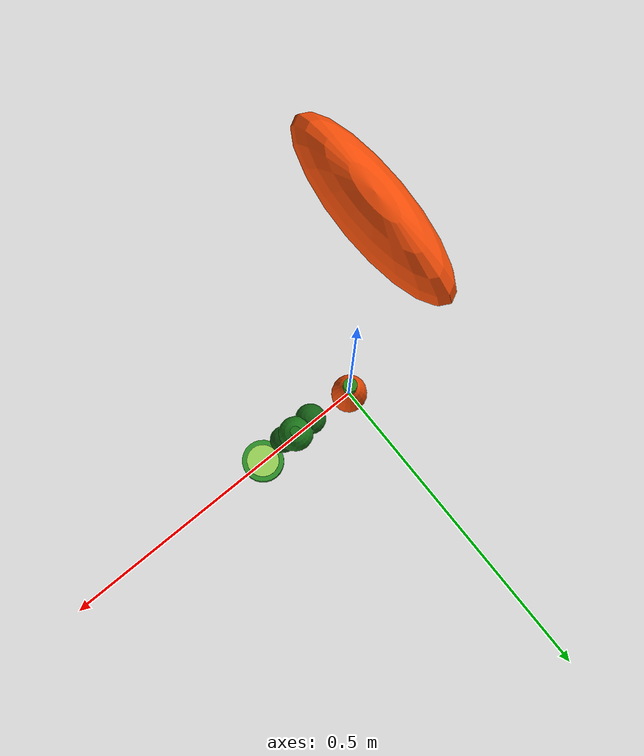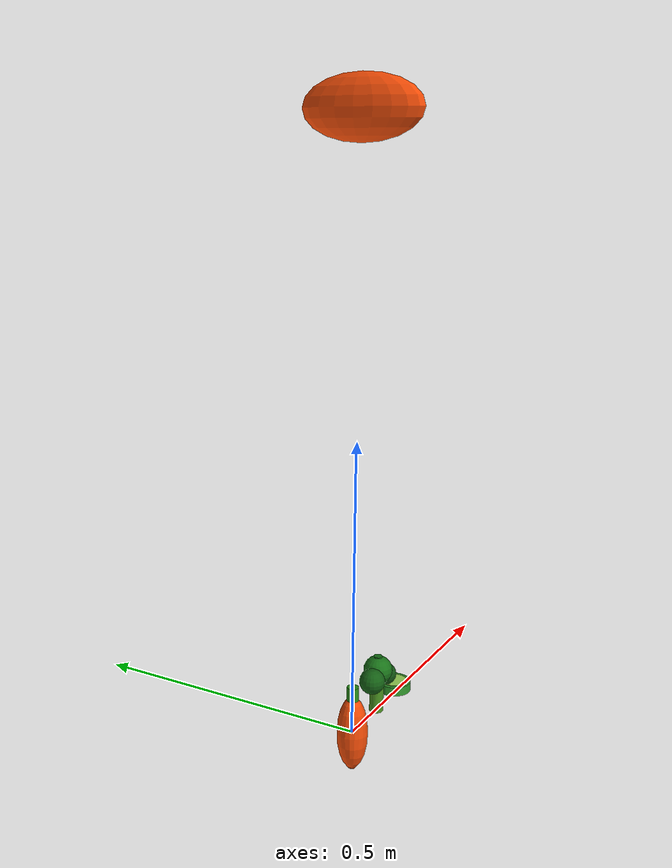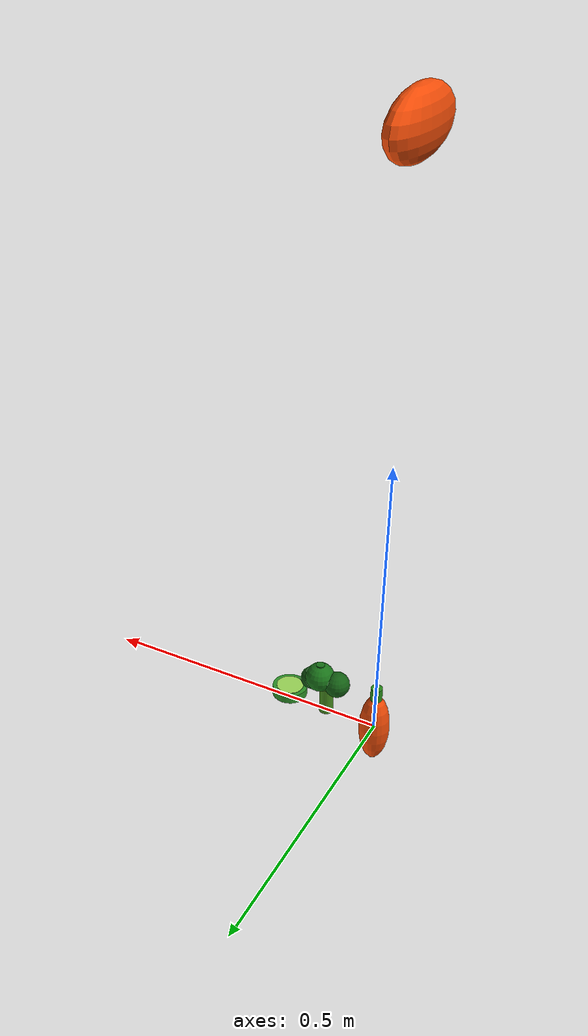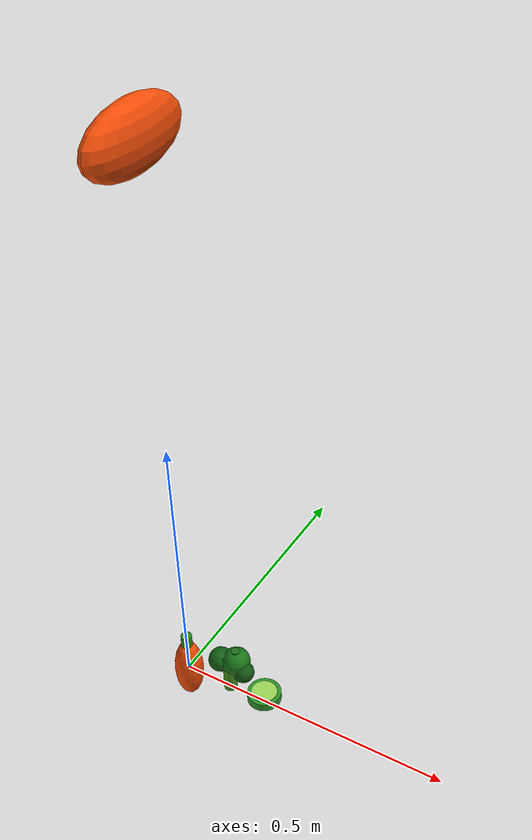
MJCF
<mujoco model="vegetables">
  <worldbody>
    <!-- Carrot: an elongated collision shape with a green visual stem. -->
    <body name="carrot" pos="0 0 0">
      <geom name="carrot_root" type="ellipsoid" size="0.026 0.026 0.065" rgba="0.95 0.30 0.03 1"/>
      <geom name="carrot_tip" type="sphere" pos="0 0 -0.058" size="0.009" rgba="0.95 0.30 0.03 1" contype="0" conaffinity="0"/>
      <!-- 2 cm diameter flat top; comfortably exceeds the 1.5 cm target. -->
      <geom name="carrot_stem" type="cylinder" pos="0 0 0.071" size="0.010 0.012" rgba="0.16 0.55 0.10 1"/>
    </body>

    <!-- Broccoli: one stem and three florets, kept as primitives for portability. -->
    <body name="broccoli" pos="0.09 0 0">
      <geom name="broccoli_stem" type="cylinder" pos="0 0 0.025" size="0.012 0.025" rgba="0.28 0.55 0.12 1"/>
      <geom name="broccoli_floret_left" type="sphere" pos="-0.018 0 0.062" size="0.022" rgba="0.08 0.38 0.08 1"/>
      <geom name="broccoli_floret_center" type="sphere" pos="0.012 0.004 0.070" size="0.025" rgba="0.10 0.46 0.10 1"/>
      <geom name="broccoli_floret_right" type="sphere" pos="0.030 -0.002 0.057" size="0.019" rgba="0.07 0.33 0.07 1"/>
      <!-- Flat top provides a 1.5 cm diameter upward-facing surface. -->
      <geom name="broccoli_grasp_surface" type="cylinder" pos="0.012 0.004 0.095" size="0.0075 0.001" rgba="0.10 0.46 0.10 1"/>
    </body>

    <!-- Cucumber slice. -->
    <body name="cucumber_slice" pos="0.16 0 0.018">
      <geom name="cucumber_rind" type="cylinder" size="0.030 0.008" rgba="0.18 0.58 0.16 1"/>
      <geom name="cucumber_flesh" type="cylinder" pos="0 0 0.0082" size="0.023 0.001" rgba="0.62 0.86 0.35 1" contype="0" conaffinity="0"/>
    </body>

    <body>
      <geom name="vegetable_test_ellipsoid" type="ellipsoid" size="0.03 0.1 0.05" pos="0 0 1" rgba="0.95 0.30 0.03 1"/>
    </body>
  </worldbody>
</mujoco>
